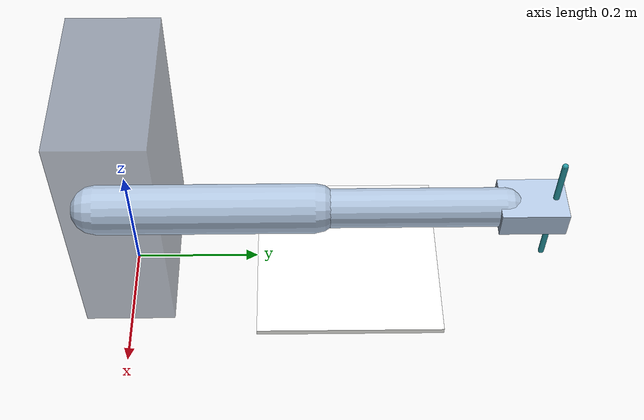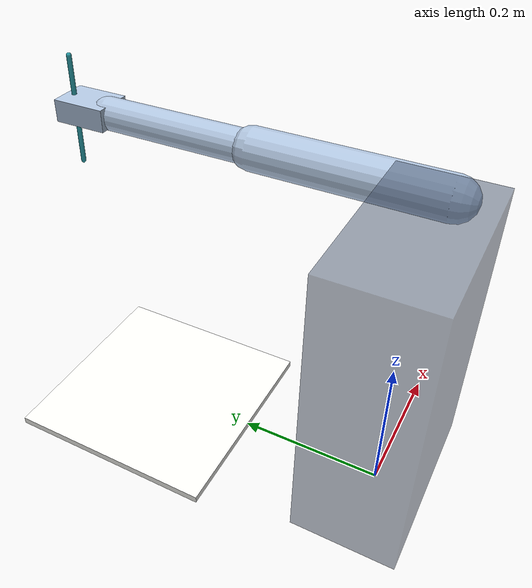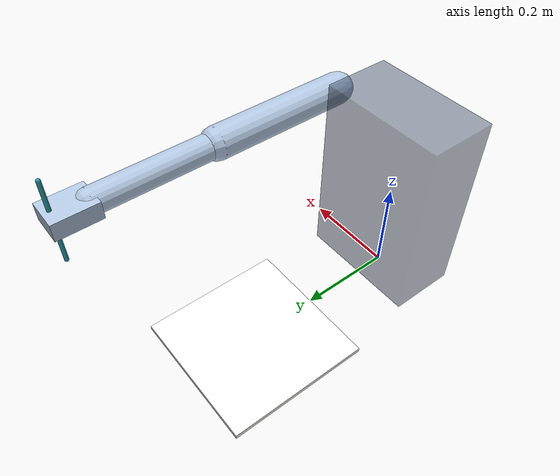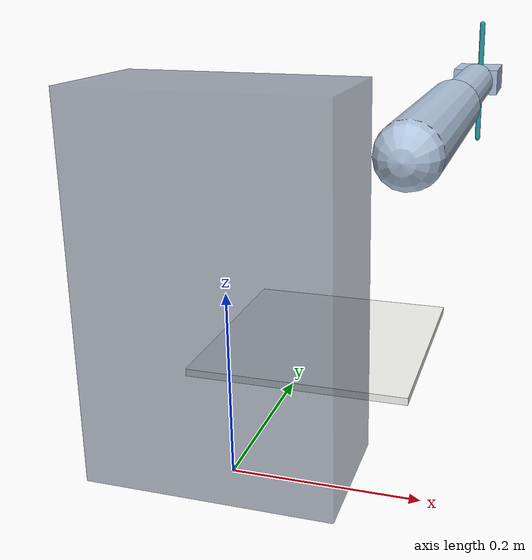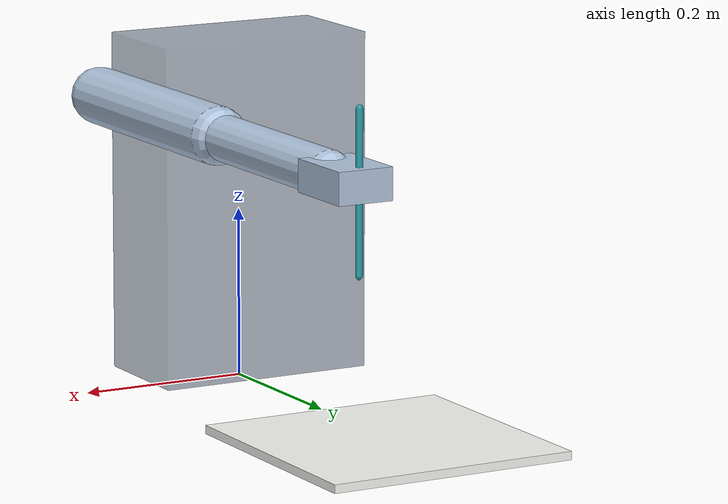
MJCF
<mujoco model="ChapArm right arm">
  <compiler angle="radian" autolimits="true"/>
  <option timestep="0.002" gravity="0 0 -9.81" integrator="implicitfast"
          solver="Newton" iterations="60" tolerance="1e-9" cone="elliptic"/>
  <size njmax="200" nconmax="50"/>
  <visual>
    <global azimuth="135" elevation="-25"/>
    <rgba haze="0.1 0.12 0.16 1"/>
  </visual>
  <default>
    <joint type="hinge" armature="0.002" damping="0.1" limited="true"/>
    <geom type="capsule" contype="0" conaffinity="0" rgba="0.69 0.77 0.87 1"/>
    <site size="0.006" rgba="0.1 0.9 0.8 1"/>
    <motor ctrllimited="true"/>
  </default>
  <worldbody>
    <light pos="0 -0.2 1.5" dir="0 0 -1" diffuse="0.9 0.9 0.9"/>
    <camera name="overview" pos="0.85 -0.55 0.75" xyaxes="0.7 0.7 0 -0.4 0.4 0.82"/>
    <!-- A finite canvas, top at z=0; only the spherical nib collides in v1. -->
    <geom name="canvas" type="box" pos="0 0.35 -0.005" size="0.15 0.15 0.005"
          rgba="0.98 0.98 0.96 1" contype="1" conaffinity="2"
          friction="0.25 0.002 0.0001" condim="3" solref="0.01 1.5"
          solimp="0.1 0.95 0.001"/>
    <geom name="torso" type="box" pos="0 0 0.21" size="0.13 0.07 0.2"
          rgba="0.22 0.28 0.38 0.5"/>
    <body name="upper_arm" pos="0.18 0 0.35">
      <joint name="shoulder_yaw" axis="0 0 1" range="-1.6 1.6" damping="1.4" armature="0.015"/>
      <joint name="shoulder_pitch" axis="1 0 0" range="-1.9 1.9" damping="1.6" armature="0.015"/>
      <joint name="shoulder_roll" axis="0 1 0" range="-1.6 1.6" damping="0.8" armature="0.01"/>
      <geom name="upper_arm_shape" fromto="0 0 0 0 0.29 0" size="0.033" mass="1.6"/>
      <site name="shoulder" pos="0 0 0"/>
      <body name="forearm" pos="0 0.29 0">
        <joint name="elbow_flexion" axis="1 0 0" range="0.05 2.6" damping="0.6" armature="0.008"/>
        <joint name="forearm_rotation" axis="0 1 0" range="-1.6 1.6" damping="0.1"/>
        <geom name="forearm_shape" fromto="0 0 0 0 0.25 0" size="0.026" mass="1.0"/>
        <site name="elbow" pos="0 0 0"/>
        <body name="hand" pos="0 0.25 0">
          <joint name="wrist_flexion" axis="1 0 0" range="-1.4 1.4" damping="0.08"/>
          <joint name="wrist_deviation" axis="0 0 1" range="-0.65 0.65" damping="0.06"/>
          <geom name="hand_shape" type="box" pos="0 0.035 0" size="0.032 0.044 0.018" mass="0.35"/>
          <site name="wrist" pos="0 0 0"/>
          <body name="pen" pos="0 0.065 0">
            <geom name="pen_shaft" fromto="0 0 -0.097 0 0 0.08" size="0.004" mass="0.018" rgba="0.16 0.62 0.66 1"/>
            <geom name="pen_nib" type="sphere" pos="0 0 -0.1" size="0.0015" mass="0.0005"
                  contype="2" conaffinity="1" condim="3" friction="0.25 0.002 0.0001"
                  solref="0.01 1.5" solimp="0.1 0.95 0.001" rgba="0.12 0.12 0.13 1"/>
            <site name="grip" pos="0 0 0"/>
            <site name="nib_center" pos="0 0 -0.1" size="0.002"/>
          </body>
        </body>
      </body>
    </body>
  </worldbody>
  <actuator>
    <motor name="shoulder_yaw_motor" joint="shoulder_yaw" ctrlrange="-25 25"/>
    <motor name="shoulder_pitch_motor" joint="shoulder_pitch" ctrlrange="-25 25"/>
    <motor name="shoulder_roll_motor" joint="shoulder_roll" ctrlrange="-20 20"/>
    <motor name="elbow_motor" joint="elbow_flexion" ctrlrange="-15 15"/>
    <motor name="forearm_motor" joint="forearm_rotation" ctrlrange="-4 4"/>
    <motor name="wrist_flexion_motor" joint="wrist_flexion" ctrlrange="-3 3"/>
    <motor name="wrist_deviation_motor" joint="wrist_deviation" ctrlrange="-3 3"/>
  </actuator>
</mujoco>
